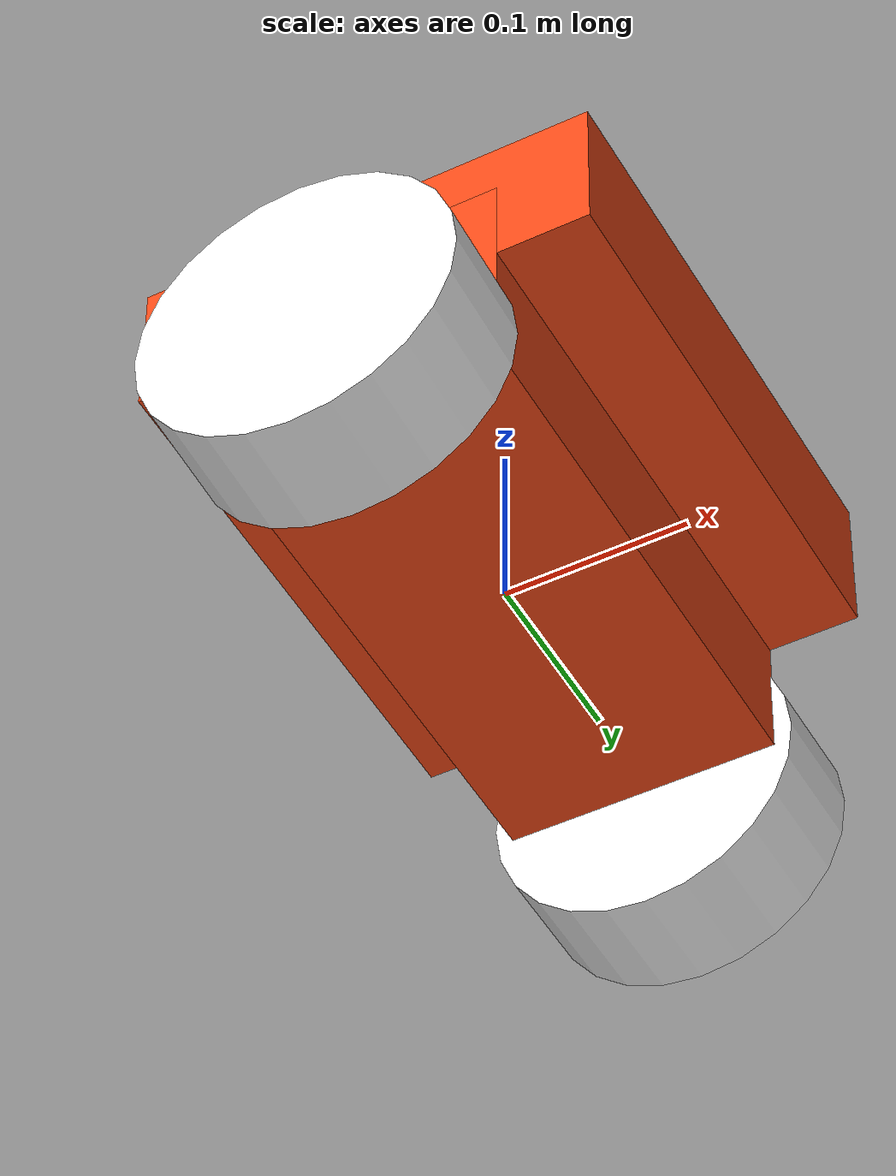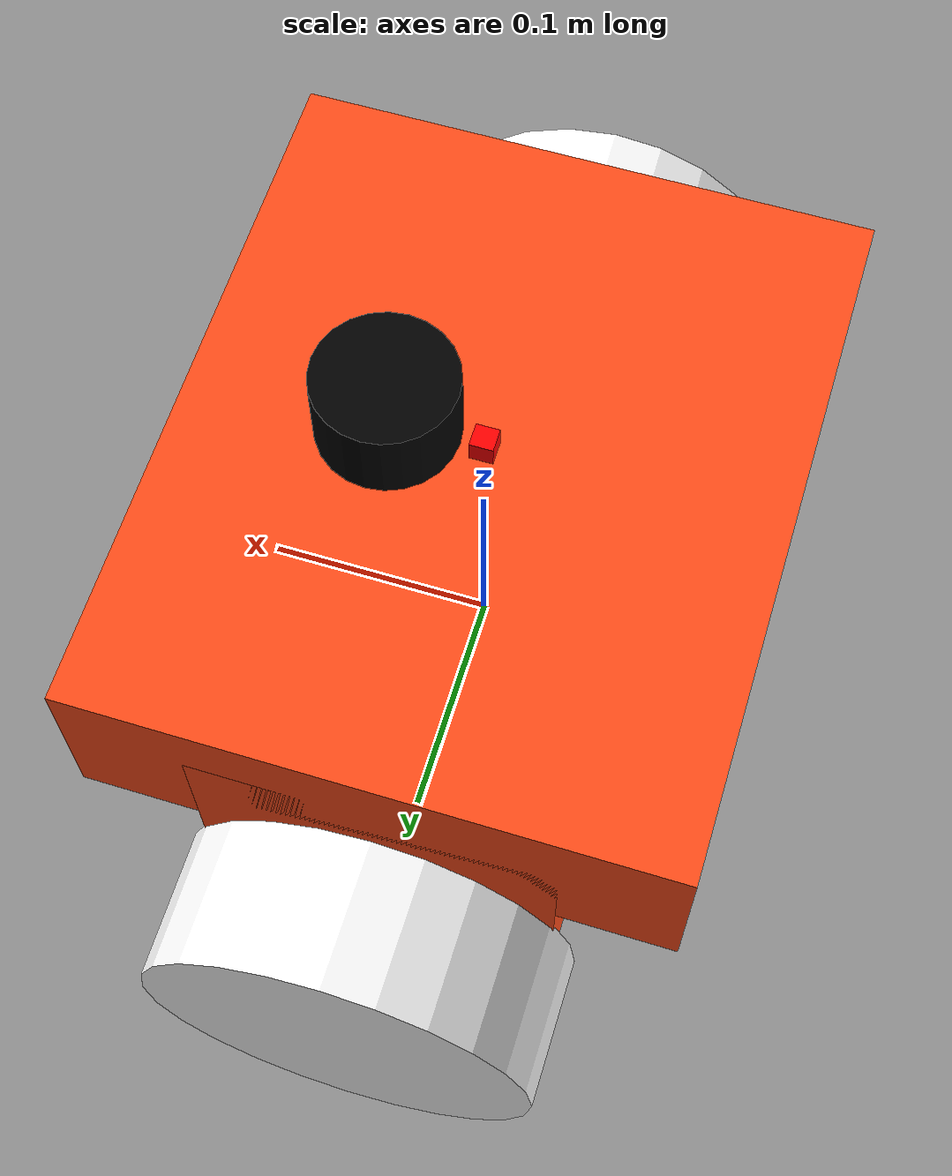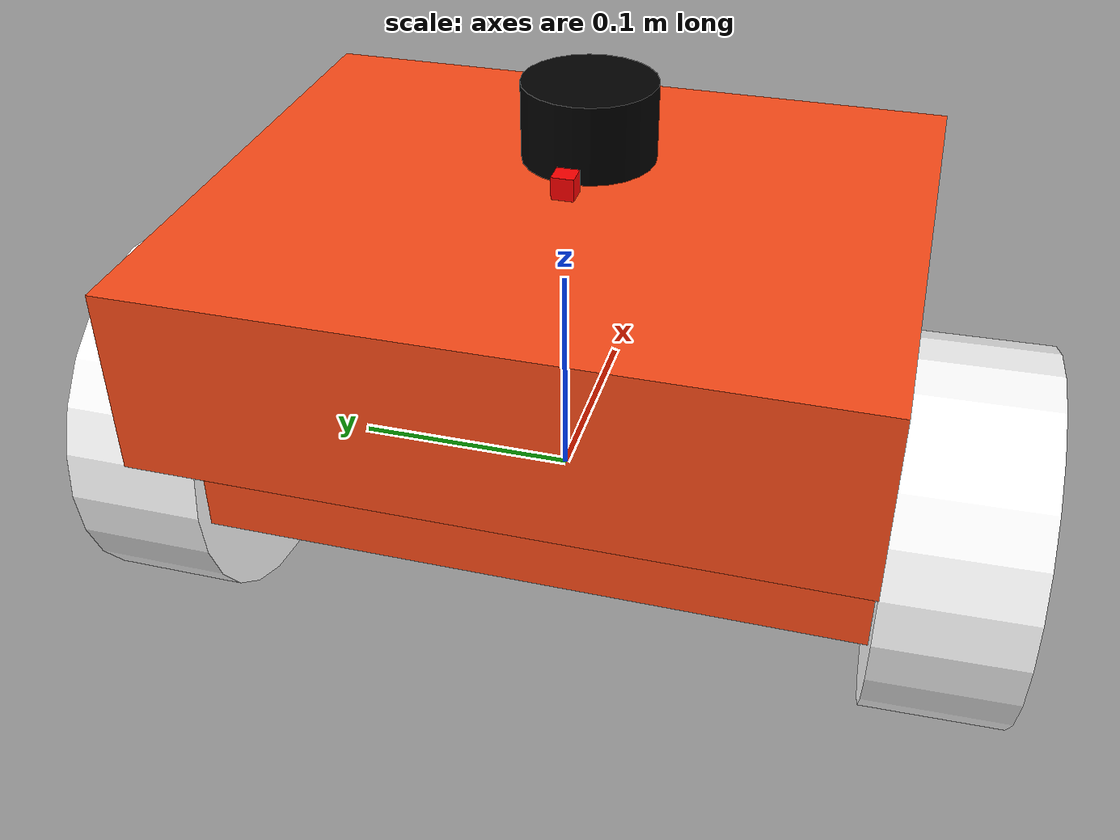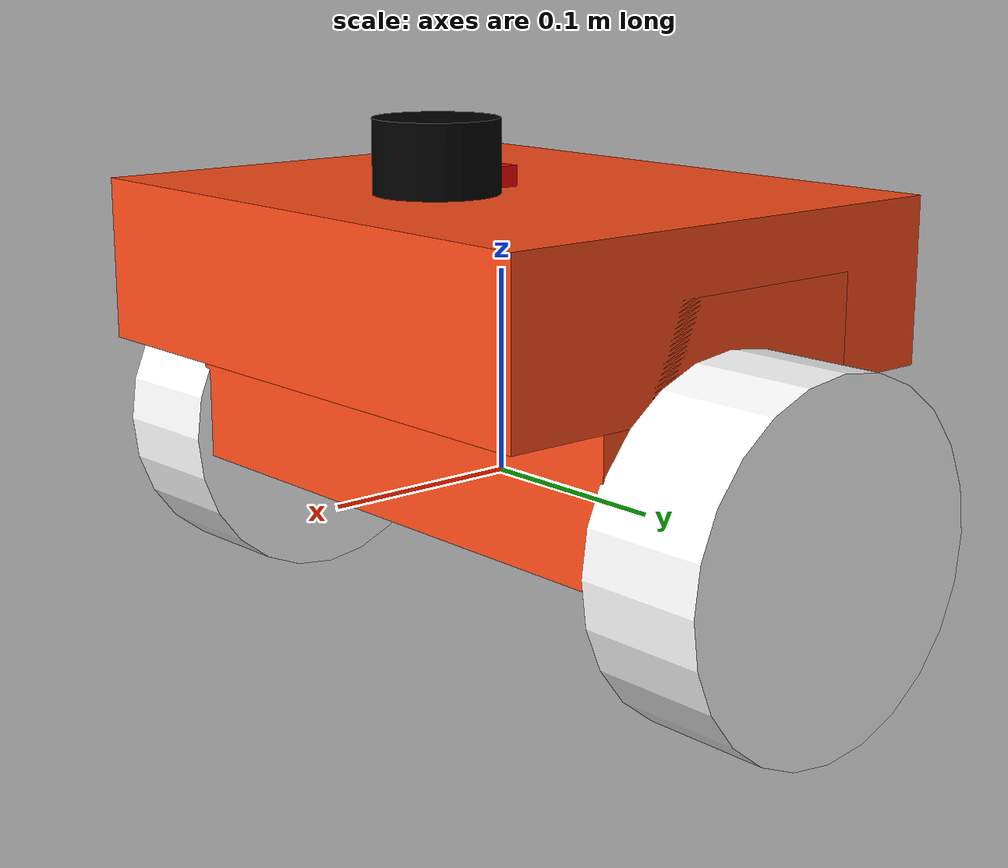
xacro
<?xml version="1.0"?>
<robot xmlns:xacro="http://www.ros.org/wiki/xacro"  name="robot">

    <xacro:arg name="sim_mode" default="false"/> -->
    <xacro:include filename="ros2_control.xacro" />

    <xacro:include filename="robot_core.xacro" />
    <xacro:include filename="lidar.xacro" />
    <xacro:include filename="imu.xacro" />

</robot>

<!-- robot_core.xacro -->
<robot name="GeneratedRobot">

    <material name="white">
        <color rgba="1 1 1 1" />
    </material>

    <material name="orange">
        <color rgba="1 0.3 0.1 1"/>
    </material>

    <material name="blue">
        <color rgba="0.2 0.2 1 1"/>
    </material>

    <material name="black">
        <color rgba="0 0 0 1"/>
    </material>

    <material name="red">
        <color rgba="1 0 0 1"/>
    </material>

    <link name = "base_link">
        <origin xyz="0.0 0.0 0.08" rpy="0.0 0.0 0.0"/>
    </link>

    <joint name="chassis_joint" type="fixed">
        <origin xyz="0.0 0.0 0.0" rpy="0.0 0.0 0.0"/>
        <parent link="base_link"/>
        <child link="chassis"/>
    </joint>

    <!-- CHASSIS LINK -->

    <link name="chassis">
        <visual>
            <origin xyz="0 0 0.05" rpy="0 0 0" />
            <geometry>
                <box size="0.15 0.3 0.12" />
            </geometry>
            <material name="orange"/>
        </visual>
        <visual>
            <origin xyz="0.0 0.0 0.1" rpy="0.0 0.0 0.0"/>
            <geometry>
                <box size="0.25 0.3 0.08"/>
            </geometry>
            <material name = "orange"/>
        </visual>
        <collision>
            <origin xyz="0 0 0.08" rpy="0 0 0" />
            <geometry>
                <box size="0.18 0.3 0.15" />
            </geometry>
        </collision>
        <collision>
            <origin xyz="0.0 0.0 0.1" rpy="0.0 0.0 0.0"/>
            <geometry>
                <box size="0.25 0.3 0.08"/>
            </geometry>
            <material name = "orange"/>
        </collision>
        <inertial>
            <origin xyz="0 0 0.08" rpy="0 0 0" />
            <mass value="7"/>
            <inertia ixx="0.061" ixy="0" ixz="0" iyy="0.022" iyz="0" izz="0.066" />
        </inertial>
    </link>

    <gazebo reference="chassis">
        <material>Gazebo/Orange</material>
    </gazebo>

    <joint name="base_footprint_joint" type="fixed">
        <parent link="base_link"/>
        <child link="base_footprint"/>
        <origin xyz="0.0 0.0 0.0" rpy="0.0 0.0 0.0"/>
    </joint>

    <link name="base_footprint">

    </link>

    <!-- LEFT WHEEL -->

    <link name="left_wheel">
        <visual>
            <origin xyz="0 0 0" rpy="0 0 0" />
            <geometry>
                <cylinder radius="0.08499999999999996" length="0.0635" />
            </geometry>
            <material name="white"/>
        </visual>
        <collision>
            <origin xyz="0 0 0" rpy="0 0 0" />
            <geometry>
                <cylinder radius="0.08499999999999996" length="0.0635" />
            </geometry>
        </collision>
        <inertial>
            <origin xyz="0 0 0" rpy="0 0 0" />
            <mass value="2" />
            <inertia ixx="0.019266666666666668" ixy="0" ixz="0" iyy="0.028900000000000006" iyz="0" izz="0.019266666666666668" />
        </inertial>
    </link>

    <joint name="left_wheel_joint" type="continuous">
        <parent link="chassis" />
        <child link="left_wheel" />
        <origin xyz="0 0.18 0" rpy="1.5707963267948963 0 0" />
        <axis xyz="0 0 1"/>
    </joint>

    <gazebo reference="left_wheel">
        <material>Gazebo/White</material>
    </gazebo>

    <!-- RIGHT WHEEL -->

    <link name="right_wheel">
        <visual>
            <origin xyz="0 0 0" rpy="0 0 0" />
            <geometry>
                <cylinder radius="0.085" length="0.0635" />
            </geometry>
            <material name="white"/>
        </visual>
        <collision>
            <origin xyz="0 0 0" rpy="0 0 0" />
            <geometry>
                <cylinder radius="0.085" length="0.0635" />
            </geometry>
        </collision>
        <inertial>
            <origin xyz="0 0 0" rpy="0 0 0" />
            <mass value="1" />
            <inertia ixx="0" ixy="0" ixz="0" iyy="0" iyz="0" izz="0" />
        </inertial>
    </link>

    <joint name="right_wheel_joint" type="continuous">
        <parent link="chassis" />
        <child link="right_wheel" />
        <origin xyz="0 -0.18 0" rpy="1.5707963267948966 0 0.030840783524403125" />
        <axis xyz="0 0 1"/>
    </joint>

    <gazebo reference="right_wheel">
        <material>Gazebo/White</material>
    </gazebo>

</robot>

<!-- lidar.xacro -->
<robot xmlns:xacro="http://www.ros.org/wiki/xacro" >

    <link name="laser">
        <visual>
        <origin xyz="0 0 0" rpy="0 0 0" />
        <geometry>
            <cylinder radius="0.03000000000000003" length="0.04" />
        </geometry>
        <material name="black"/>
        </visual>
        <collision>
        <origin xyz="0 0 0" rpy="0 0 0" />
        <geometry>
            <cylinder radius="0.03000000000000003" length="0.04" />
        </geometry>
        </collision>
        <inertial>
        <origin xyz="0 0 0" rpy="0 0 0" />
        <mass value="0.11" />
        <inertia ixx="0.00013199999999999996" ixy="0" ixz="0" iyy="0.00019799999999999996" iyz="0" izz="0.00013199999999999996" />
        </inertial>
    </link>

    <joint name="laser_joint" type="fixed">
        <parent link="base_link" />
        <child link="laser" />
        <origin xyz="0.04 0 0.155" rpy="0 0 0" />
    </joint>

    <gazebo reference="laser">
        <material>Gazebo/Black</material>

        <sensor name="laser" type="ray">
            <pose> 0 0 0 0 0 0 </pose>
            <visualize>false</visualize>
            <update_rate>10</update_rate>
            <ray>
                <scan>
                    <horizontal>
                        <samples>360</samples>
                        <min_angle>-3.14</min_angle>
                        <max_angle>3.14</max_angle>
                    </horizontal>
                </scan>
                <range>
                    <min>0.3</min>
                    <max>12</max>
                </range>
            </ray>
            <plugin name="laser_controller" filename="libgazebo_ros_ray_sensor.so">
                <ros>
                    <remapping>~/out:=/scan</remapping>
                </ros>
                <output_type>sensor_msgs/LaserScan</output_type>
                <frame_name>laser</frame_name>
            </plugin>
        </sensor>
    </gazebo>

</robot>

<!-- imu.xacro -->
<robot xmlns:xacro="http://www.ros.org/wiki/xacro" >

  <joint name="imu_joint" type="fixed">
    <parent link="chassis" />
    <child link="imu" />
    <origin xyz="0 0 0.145" rpy="0 0 0" />
  </joint>

  <link name="imu">
    <visual>
      <origin xyz="0 0 0" rpy="0 0 0" />
      <geometry>
        <box size="0.01 0.01 0.01" />
      </geometry>
      <material name="red"/>
    </visual>
    <collision>
      <origin xyz="0 0 0" rpy="0 0 0" />
      <geometry>
        <box size="0.01 0.01 0.01" />
      </geometry>
    </collision>
    <inertial>
      <origin xyz="0 0 0" rpy="0 0 0" />
      <mass value="1" />
      <inertia ixx="0.000016666666666666667" ixy="0" ixz="0" iyy="0.000016666666666666667" iyz="0" izz="0.000016666666666666667" />
    </inertial>
  </link>

 <gazebo reference="imu">
   <sensor name="mpu6050_imu" type="imu">
    <plugin name="imu_controller" filename="libgazebo_ros_imu_sensor.so">
      <frame_name>imu</frame_name>
       <ros>
         <remapping>~/out:=/imu</remapping>
       </ros>
      <initial_orientation_as_reference>false</initial_orientation_as_reference>
    </plugin>
     <always_on>true</always_on>
     <update_rate>100</update_rate>
     <visualize>true</visualize>
     <imu>
       <angular_velocity>
         <x>
           <noise type="gaussian">
             <mean>0.0</mean>
             <stddev>2e-4</stddev>
           </noise>
         </x>
         <y>
           <noise type="gaussian">
             <mean>0.0</mean>
             <stddev>2e-4</stddev>
           </noise>
         </y>
         <z>
           <noise type="gaussian">
             <mean>0.0</mean>
             <stddev>2e-4</stddev>
           </noise>
         </z>
       </angular_velocity>
       <linear_acceleration>
         <x>
           <noise type="gaussian">
             <mean>0.0</mean>
             <stddev>1.7e-2</stddev>
           </noise>
         </x>
         <y>
           <noise type="gaussian">
             <mean>0.0</mean>
             <stddev>1.7e-2</stddev>
           </noise>
         </y>
         <z>
           <noise type="gaussian">
             <mean>0.0</mean>
             <stddev>1.7e-2</stddev>
           </noise>
         </z>
       </linear_acceleration>
       <orientation>
         <x>
           <noise type="gaussian">
              <mean>0.0</mean>
              <stddev>2e-3</stddev>
            </noise>
          </x>
          <y>
            <noise type="gaussian">
              <mean>0.0</mean>
              <stddev>2e-3</stddev>
            </noise>
          </y>
          <z>
            <noise type="gaussian">
              <mean>0.0</mean>
              <stddev>2e-3</stddev>
            </noise>
          </z>
        </orientation>
     </imu>
   </sensor>
 </gazebo>

</robot>
